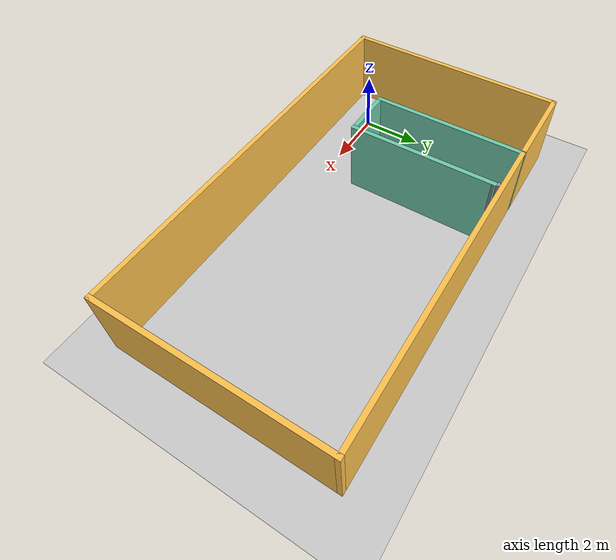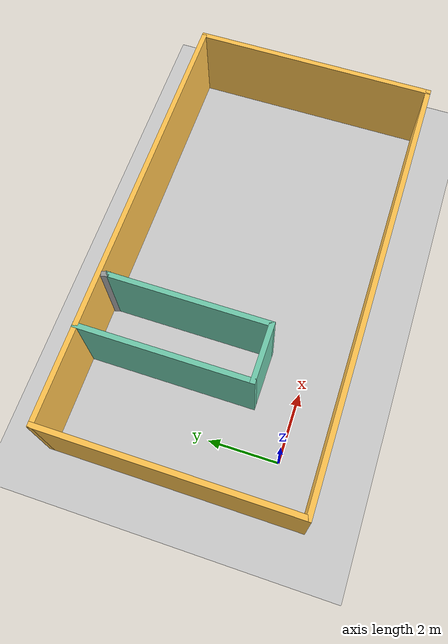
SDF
<sdf version="1.6">
 <world name="default">
  <light name="sun" type="directional">
   <pose>0 0 10 0 -0 0</pose>
   <diffuse>0.8 0.8 0.8 1</diffuse>
   <specular>0.2 0.2 0.2 1</specular>
   <attenuation>
    <range>1000</range>
    <constant>0.9</constant>
    <linear>0.01</linear>
    <quadratic>0.001</quadratic>
   </attenuation>
   <direction>-0.5 0.1 -0.9</direction>
  </light>
  <model name="ground_plane">
   <static>1</static>
   <link name="link">
    <collision name="collision">
     <geometry><plane><normal>0 0 1</normal><size>100 100</size></plane></geometry>
     <surface>
      <contact><collide_bitmask>65535</collide_bitmask></contact>
      <friction><ode><mu>100</mu><mu2>50</mu2></ode></friction>
     </surface>
    </collision>
    <visual name="visual">
     <cast_shadows>0</cast_shadows>
     <geometry><plane><normal>0 0 1</normal><size>100 100</size></plane></geometry>
     <material>
      <script><uri>file://media/materials/scripts/gazebo.material</uri><name>Gazebo/Grey</name></script>
     </material>
    </visual>
   </link>
  </model>
  <gravity>0 0 -9.8</gravity>
  <magnetic_field>6e-06 2.3e-05 -4.2e-05</magnetic_field>
  <atmosphere type="adiabatic"/>
  <physics name="default_physics" default="0" type="ode">
   <max_step_size>0.001</max_step_size>
   <real_time_factor>1</real_time_factor>
   <real_time_update_rate>1000</real_time_update_rate>
  </physics>
  <scene><ambient>0.4 0.4 0.4 1</ambient><background>0.7 0.7 0.7 1</background><shadows>1</shadows></scene>
  <spherical_coordinates>
   <surface_model>EARTH_WGS84</surface_model>
   <latitude_deg>0</latitude_deg>
   <longitude_deg>0</longitude_deg>
   <elevation>0</elevation>
   <heading_deg>0</heading_deg>
  </spherical_coordinates>
  <model name="TestRoom">
   <pose>4.96376 2.43874 0 0 -0 0</pose>
   <link name="Wall_0">
    <collision name="Wall_0_Collision">
     <geometry><box><size>7.25 0.15 2.5</size></box></geometry>
     <pose>0 0 1.25 0 -0 0</pose>
    </collision>
    <visual name="Wall_0_Visual">
     <pose>0 0 1.25 0 -0 0</pose>
     <geometry><box><size>7.25 0.15 2.5</size></box></geometry>
     <material>
      <script><uri>file://media/materials/scripts/gazebo.material</uri><name>Gazebo/Grey</name></script>
      <ambient>1 0.764706 0.305882 1</ambient>
     </material>
     <meta><layer>0</layer></meta>
    </visual>
    <pose>-6.425 -0.001985 0 0 0 -1.5708</pose>
   </link>
   <link name="Wall_1">
    <collision name="Wall_1_Collision">
     <geometry><box><size>13 0.15 2.5</size></box></geometry>
     <pose>0 0 1.25 0 -0 0</pose>
    </collision>
    <visual name="Wall_1_Visual">
     <pose>0 0 1.25 0 -0 0</pose>
     <geometry><box><size>13 0.15 2.5</size></box></geometry>
     <material>
      <script><uri>file://media/materials/scripts/gazebo.material</uri><name>Gazebo/Grey</name></script>
      <ambient>1 0.764706 0.305882 1</ambient>
     </material>
     <meta><layer>0</layer></meta>
    </visual>
    <pose>0 -3.55199 0 0 -0 0</pose>
   </link>
   <link name="Wall_2">
    <collision name="Wall_2_Collision">
     <geometry><box><size>7.25 0.15 2.5</size></box></geometry>
     <pose>0 0 1.25 0 -0 0</pose>
    </collision>
    <visual name="Wall_2_Visual">
     <pose>0 0 1.25 0 -0 0</pose>
     <geometry><box><size>7.25 0.15 2.5</size></box></geometry>
     <material>
      <script><uri>file://media/materials/scripts/gazebo.material</uri><name>Gazebo/Grey</name></script>
      <ambient>1 0.764706 0.305882 1</ambient>
     </material>
     <meta><layer>0</layer></meta>
    </visual>
    <pose>6.425 -0.001985 0 0 -0 1.5708</pose>
   </link>
   <link name="Wall_3">
    <collision name="Wall_3_Collision">
     <geometry><box><size>13 0.15 2.5</size></box></geometry>
     <pose>0 0 1.25 0 -0 0</pose>
    </collision>
    <visual name="Wall_3_Visual">
     <pose>0 0 1.25 0 -0 0</pose>
     <geometry><box><size>13 0.15 2.5</size></box></geometry>
     <material>
      <script><uri>file://media/materials/scripts/gazebo.material</uri><name>Gazebo/Grey</name></script>
      <ambient>1 0.764706 0.305882 1</ambient>
     </material>
     <meta><layer>0</layer></meta>
    </visual>
    <pose>0 3.54801 0 0 -0 3.14159</pose>
   </link>
   <link name="Wall_5">
    <collision name="Wall_5_Collision">
     <geometry><box><size>5 0.15 2.5</size></box></geometry>
     <pose>0 0 1.25 0 -0 0</pose>
    </collision>
    <visual name="Wall_5_Visual">
     <pose>0 0 1.25 0 -0 0</pose>
     <geometry><box><size>5 0.15 2.5</size></box></geometry>
     <material>
      <script><uri>file://media/materials/scripts/gazebo.material</uri><name>Gazebo/Grey</name></script>
      <ambient>0.435294 0.796078 0.67451 1</ambient>
     </material>
     <meta><layer>0</layer></meta>
    </visual>
    <pose>-3.6891 1.12698 0 0 0 -1.5708</pose>
   </link>
   <link name="Wall_7">
    <collision name="Wall_7_Collision">
     <geometry><box><size>1.75 0.15 2.5</size></box></geometry>
     <pose>0 0 1.25 0 -0 0</pose>
    </collision>
    <visual name="Wall_7_Visual">
     <pose>0 0 1.25 0 -0 0</pose>
     <geometry><box><size>1.75 0.15 2.5</size></box></geometry>
     <material>
      <script><uri>file://media/materials/scripts/gazebo.material</uri><name>Gazebo/Grey</name></script>
      <ambient>0.435294 0.796078 0.67451 1</ambient>
     </material>
     <meta><layer>0</layer></meta>
    </visual>
    <pose>-2.8891 -1.29801 0 0 -0 0</pose>
   </link>
   <link name="Wall_8">
    <collision name="Wall_8_Collision">
     <geometry><box><size>4.75 0.15 2.5</size></box></geometry>
     <pose>0 0 1.25 0 -0 0</pose>
    </collision>
    <visual name="Wall_8_Visual">
     <pose>0 0 1.25 0 -0 0</pose>
     <geometry><box><size>4.75 0.15 2.5</size></box></geometry>
     <material>
      <script><uri>file://media/materials/scripts/gazebo.material</uri><name>Gazebo/Grey</name></script>
      <ambient>0.435294 0.796078 0.67451 1</ambient>
     </material>
     <meta><layer>0</layer></meta>
    </visual>
    <pose>-2.08909 1.00198 0 0 -0 1.5708</pose>
   </link>
   <link name="Wall_9">
    <collision name="Wall_9_Collision">
     <geometry><box><size>0.25 0.15 2.5</size></box></geometry>
     <pose>0 0 1.25 0 -0 0</pose>
    </collision>
    <visual name="Wall_9_Visual">
     <pose>0 0 1.25 0 -0 0</pose>
     <geometry><box><size>0.25 0.15 2.5</size></box></geometry>
     <material>
      <script><uri>file://media/materials/scripts/gazebo.material</uri><name>Gazebo/Grey</name></script>
      <ambient>1 1 1 1</ambient>
     </material>
     <meta><layer>0</layer></meta>
    </visual>
    <pose>-2.10204 3.35028 0 0 -0 1.8326</pose>
   </link>
   <static>1</static>
  </model>
 </world>
</sdf>
